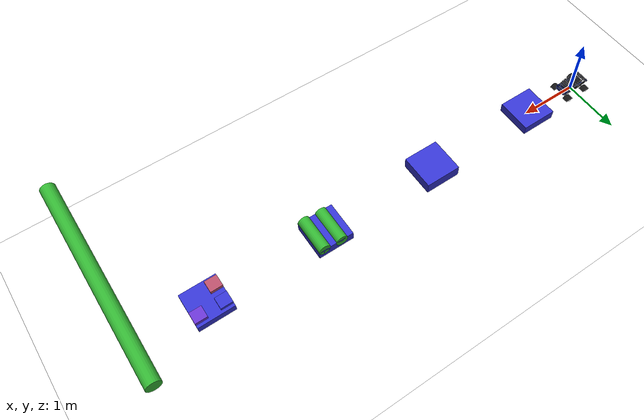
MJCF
<mujoco model="monster_truck_flip_2d">
  <option gravity="0 0 -9.81" integrator="RK4" timestep="0.001"/>
  <compiler angle="radian"/>

  <default>
    <geom contype="1" conaffinity="1"
          friction="2.0 0.005 0.0002"
          solref="0.015 1"
          solimp="0.95 0.99 0.002"
          density="1000"/>
    <joint damping="0.02"/>
  </default>

  <visual>
    <quality shadowsize="2048"/>
    <map znear="0.01" zfar="20"/>
  </visual>

  <worldbody>
      <light name="sun" pos="0 0 100" dir="0 0 -1" diffuse="1 1 1"/>
      <geom name="ground" type="plane" size="100 100 0.1" rgba="1 1 1 1"/>

      <!-- obstacles single box-->
      <geom name="obs_box_1" type="box"
            pos="1.0 0.0 0.05"
            size="0.30 0.30 0.1"
            rgba="0.2 0.2 0.8 1"
            friction="5.01 0.01 0.0005"/>

      <!-- Bigger obstacles single box-->
      <geom name="obs_box_2" type="box"
            pos="3.0 0.0 0.1"
            size="0.30 0.30 0.1"
            rgba="0.2 0.2 0.8 1"
            friction="5.01 0.01 0.0005"/>

      <!-- obstacles rounded cilinders-->
      <geom name="obs_box_3" type="box"
            pos="5.0 0.0 0.05"
            size="0.30 0.30 0.1"
            rgba="0.2 0.2 0.8 1"
            friction="5.01 0.01 0.0005"/>

      <geom name="pole_box_1" type="cylinder"
            pos="4.9 0.0 0.12"
            size="0.10 0.30"
            euler="1.5708 0 0"
            rgba="0.2 0.7 0.2 1"
            friction="5.01 0.01 0.0005"/>

      <geom name="pole_box_2" type="cylinder"
            pos="5.2 0.0 0.15"
            size="0.10 0.3"
            euler="1.5708 0 0"
            rgba="0.2 0.7 0.2 1"
            friction="5.01 0.01 0.0005"/>

      <!-- obstacles boxes-->
      <geom name="obs_box_4" type="box"
            pos="7.0 0.0 0.03"
            size="0.30 0.30 0.09"
            rgba="0.2 0.2 0.8 1"
            friction="5.01 0.01 0.0005"/>

      <geom name="obs_box_5" type="box"
            pos="7.2 0.15 0.09"
            size="0.10 0.10 0.09"
            rgba="0.4 0.2 0.8 1"
            friction="7.01 0.01 0.0009"/>

      <geom name="obs_box_6" type="box"
            pos="6.8 -0.15 0.09"
            size="0.10 0.10 0.09"
            rgba="0.7 0.3 0.4 1"
            friction="5.01 0.01 0.0007"/>

      <geom name="obs_box_7" type="box"
            pos="6.8 0.15 0.09"
            size="0.10 0.10 0.08"
            rgba="0.2 0.2 0.8 1"
            friction="5.01 0.01 0.0005"/>

      <!-- Green bar at the end-->
      <geom name="pole_1" type="cylinder"
            pos="8.0 0.0 2.05"
            size="0.10 1.50"
            euler="1.5708 0 0"
            rgba="0.2 0.7 0.2 1"
            friction="5.01 0.01 0.0005"/>

      <!--
      Planar root: x-z translation + pitch about y
      This replaces the freejoint and constrains the truck to 2D.
      -->
      <body name="planar_base" pos="0 0 0">
      <joint name="root_x" type="slide" axis="1 0 0" damping="0.05"/>
      <joint name="root_z" type="slide" axis="0 0 1" damping="0.05"/>
      <joint name="root_pitch" type="hinge" axis="0 1 0" damping="0.02"/>

      <body name="chassis" pos="0 0 0.0178" quat="1 0 0 0">

        <site name="imu_site" pos="0 0 0.045" size="0.01" rgba="0 1 0 1"/>

        <!-- =========================================================
             CORE MASS / INNER CHASSIS
             ========================================================= -->
        <geom name="main_belly" type="box"
              pos="0 0 0.018"
              size="0.175 0.085 0.030"
              rgba="0.10 0.10 0.12 1"
              mass="2.10"/>

        <geom name="upper_plate" type="box"
              pos="0 0 0.055"
              size="0.125 0.075 0.020"
              rgba="0.15 0.15 0.18 1"
              mass="0.42"/>

        <geom name="front_bulkhead" type="box"
              pos="0.145 0 0.025"
              size="0.035 0.070 0.028"
              rgba="0.08 0.08 0.10 1"
              mass="0.10"/>

        <geom name="rear_bulkhead" type="box"
              pos="-0.155 0 0.025"
              size="0.040 0.070 0.028"
              rgba="0.08 0.08 0.10 1"
              mass="0.10"/>

        <geom name="skid_plate" type="box"
              pos="0 0 -0.020"
              size="0.195 0.080 0.010"
              rgba="0.20 0.20 0.22 1"
              mass="0.03"/>

        <geom name="hood_rib_1" type="capsule"
              fromto="0.226 -0.100 0.066   0.226 0.100 0.066"
              size="0.012"
              rgba="0.04 0.09 0.40 1"
              mass="0.028"/>

        <geom name="hood_rib_2" type="capsule"
              fromto="0.188 -0.099 0.076   0.188 0.099 0.076"
              size="0.012"
              rgba="0.04 0.09 0.40 1"
              mass="0.028"/>

        <geom name="hood_rib_3" type="capsule"
              fromto="0.150 -0.097 0.089   0.150 0.097 0.089"
              size="0.0115"
              rgba="0.04 0.09 0.40 1"
              mass="0.026"/>

        <geom name="hood_rib_4" type="capsule"
              fromto="0.114 -0.095 0.102   0.114 0.095 0.102"
              size="0.0105"
              rgba="0.04 0.09 0.40 1"
              mass="0.023"/>

        <!-- hood side shoulders -->
        <geom name="hood_shoulder_l" type="capsule"
              fromto="0.223 0.108 0.063   0.098 0.100 0.103"
              size="0.007"
              rgba="0.05 0.10 0.45 1"
              mass="0.009"/>

        <geom name="hood_shoulder_r" type="capsule"
              fromto="0.223 -0.108 0.063   0.098 -0.100 0.103"
              size="0.007"
              rgba="0.05 0.10 0.45 1"
              mass="0.009"/>

        <geom name="windshield_rib_1" type="capsule"
              fromto="0.145 -0.096 0.107   0.145 0.096 0.107"
              size="0.012"
              rgba="0.02 0.02 0.03 1"
              mass="0.024"/>

        <geom name="windshield_rib_2" type="capsule"
              fromto="0.115 -0.094 0.124   0.115 0.094 0.124"
              size="0.012"
              rgba="0.02 0.02 0.03 1"
              mass="0.024"/>

        <geom name="windshield_rib_3" type="capsule"
              fromto="0.085 -0.091 0.142   0.085 0.091 0.142"
              size="0.011"
              rgba="0.02 0.02 0.03 1"
              mass="0.022"/>

        <!-- A-pillars -->
        <geom name="a_pillar_l" type="capsule"
              fromto="0.152 0.094 0.098   0.075 0.090 0.154"
              size="0.007"
              rgba="0.02 0.02 0.03 1"
              mass="0.010"/>

        <geom name="a_pillar_r" type="capsule"
              fromto="0.152 -0.094 0.098   0.075 -0.090 0.154"
              size="0.007"
              rgba="0.02 0.02 0.03 1"
              mass="0.010"/>

        <!-- slightly more rounded roof -->
        <geom name="roof_rib_1" type="capsule"
              fromto="0.075 -0.088 0.154   0.075 0.088 0.154"
              size="0.011"
              rgba="0.01 0.01 0.03 1"
              mass="0.020"/>

        <geom name="roof_rib_2" type="capsule"
              fromto="0.025 -0.089 0.160   0.025 0.089 0.160"
              size="0.0115"
              rgba="0.01 0.01 0.03 1"
              mass="0.021"/>

        <geom name="roof_rib_3" type="capsule"
              fromto="-0.025 -0.090 0.164   -0.025 0.090 0.164"
              size="0.012"
              rgba="0.01 0.01 0.03 1"
              mass="0.022"/>

        <geom name="roof_rib_4" type="capsule"
              fromto="-0.075 -0.090 0.164   -0.075 0.090 0.164"
              size="0.012"
              rgba="0.01 0.01 0.03 1"
              mass="0.022"/>

        <geom name="roof_rib_5" type="capsule"
              fromto="-0.125 -0.089 0.160   -0.125 0.089 0.160"
              size="0.0115"
              rgba="0.01 0.01 0.03 1"
              mass="0.021"/>

        <geom name="roof_rib_6" type="capsule"
              fromto="-0.175 -0.088 0.154   -0.175 0.088 0.154"
              size="0.011"
              rgba="0.01 0.01 0.03 1"
              mass="0.020"/>

        <!-- center crown -->
        <geom name="roof_spine" type="capsule"
              fromto="0.070 0.000 0.159   -0.175 0.000 0.159"
              size="0.0065"
              rgba="0.02 0.02 0.04 1"
              mass="0.010"/>

        <!-- slightly lower side rails -> more dome -->
        <geom name="roof_side_l" type="capsule"
              fromto="0.075 0.086 0.149   -0.175 0.090 0.149"
              size="0.0065"
              rgba="0.02 0.02 0.04 1"
              mass="0.009"/>

        <geom name="roof_side_r" type="capsule"
              fromto="0.075 -0.086 0.149   -0.175 -0.090 0.149"
              size="0.0065"
              rgba="0.02 0.02 0.04 1"
              mass="0.009"/>

        <geom name="rear_rib_1" type="capsule"
              fromto="-0.205 -0.095 0.148   -0.205 0.095 0.148"
              size="0.012"
              rgba="0.02 0.02 0.03 1"
              mass="0.022"/>

        <geom name="rear_rib_2" type="capsule"
              fromto="-0.225 -0.097 0.130   -0.225 0.097 0.130"
              size="0.012"
              rgba="0.02 0.02 0.03 1"
              mass="0.022"/>

        <geom name="rear_rib_3" type="capsule"
              fromto="-0.245 -0.100 0.108   -0.245 0.100 0.108"
              size="0.012"
              rgba="0.02 0.02 0.03 1"
              mass="0.022"/>

        <geom name="rear_rib_4" type="capsule"
              fromto="-0.258 -0.102 0.084   -0.258 0.102 0.084"
              size="0.011"
              rgba="0.02 0.02 0.03 1"
              mass="0.020"/>

        <geom name="rear_tail_lower" type="capsule"
              fromto="-0.265 -0.103 0.064   -0.265 0.103 0.064"
              size="0.010"
              rgba="0.03 0.03 0.05 1"
              mass="0.015"/>

        <!-- rounded rear side corners -->
        <geom name="rear_side_curve_l" type="capsule"
              fromto="-0.175 0.094 0.154   -0.258 0.103 0.084"
              size="0.008"
              rgba="0.02 0.02 0.03 1"
              mass="0.012"/>

        <geom name="rear_side_curve_r" type="capsule"
              fromto="-0.175 -0.094 0.154   -0.258 -0.103 0.084"
              size="0.008"
              rgba="0.02 0.02 0.03 1"
              mass="0.012"/>

        <!-- rear shoulder edges -->
        <geom name="rear_shoulder_l" type="capsule"
              fromto="-0.205 0.108 0.145   -0.262 0.110 0.090"
              size="0.008"
              rgba="0.05 0.10 0.45 1"
              mass="0.010"/>

        <geom name="rear_shoulder_r" type="capsule"
              fromto="-0.205 -0.108 0.145   -0.262 -0.110 0.090"
              size="0.008"
              rgba="0.05 0.10 0.45 1"
              mass="0.010"/>

        <geom name="left_lower_front" type="box"
              pos="0.105 0.099 0.072"
              size="0.080 0.005 0.026"
              rgba="0.03 0.03 0.05 1"
              mass="0.015"/>

        <geom name="right_lower_front" type="box"
              pos="0.105 -0.099 0.072"
              size="0.080 0.005 0.026"
              rgba="0.03 0.03 0.05 1"
              mass="0.015"/>

        <geom name="left_lower_mid" type="box"
              pos="-0.010 0.099 0.070"
              size="0.050 0.005 0.032"
              rgba="0.03 0.03 0.05 1"
              mass="0.012"/>

        <geom name="right_lower_mid" type="box"
              pos="-0.010 -0.099 0.070"
              size="0.050 0.005 0.032"
              rgba="0.03 0.03 0.05 1"
              mass="0.012"/>

        <geom name="left_lower_rear" type="box"
              pos="-0.155 0.101 0.078"
              size="0.070 0.005 0.030"
              euler="0 0.10 0"
              rgba="0.03 0.03 0.05 1"
              mass="0.012"/>

        <geom name="right_lower_rear" type="box"
              pos="-0.155 -0.101 0.078"
              size="0.070 0.005 0.030"
              euler="0 0.10 0"
              rgba="0.03 0.03 0.05 1"
              mass="0.012"/>

        <!-- =========================================================
             FRONT FACE
             ========================================================= -->
        <geom name="front_face" type="box"
              pos="0.237 0 0.054"
              size="0.008 0.093 0.028"
              rgba="0.04 0.09 0.40 1"
              mass="0.016"/>

        <geom name="front_face_top" type="capsule"
              fromto="0.233 -0.090 0.083   0.233 0.090 0.083"
              size="0.007"
              rgba="0.04 0.09 0.40 1"
              mass="0.008"/>

        <!-- =========================================================
             VISUAL-ONLY WINDOWS
             ========================================================= -->
        <geom name="windshield_glass_1" type="box"
              pos="0.128 0 0.121"
              size="0.050 0.080 0.003"
              euler="0 -2.55 0"
              rgba="0.92 0.93 0.96 0.30"
              contype="0" conaffinity="0" density="0"/>

        <geom name="left_side_glass" type="box"
              pos="-0.045 0.091 0.118"
              size="0.047 0.002 0.024"
              euler="0 0.08 0"
              rgba="0.90 0.92 0.95 0.25"
              contype="0" conaffinity="0" density="0"/>

        <geom name="right_side_glass" type="box"
              pos="-0.045 -0.091 0.118"
              size="0.047 0.002 0.024"
              euler="0 0.08 0"
              rgba="0.90 0.92 0.95 0.25"
              contype="0" conaffinity="0" density="0"/>

        <!-- optional visual blue inner bars -->
        <geom name="inner_bar_l" type="capsule"
              fromto="0.025 0.083 0.080  -0.160 0.083 0.086"
              size="0.005"
              rgba="0.15 0.30 0.95 1"
              contype="0" conaffinity="0" density="0"/>

        <geom name="inner_bar_r" type="capsule"
              fromto="0.025 -0.083 0.080  -0.160 -0.083 0.086"
              size="0.005"
              rgba="0.15 0.30 0.95 1"
              contype="0" conaffinity="0" density="0"/>

        <!-- visual axle tubes -->
        <geom name="front_axle_vis" type="capsule"
              fromto="0.1905 -0.130 -0.080   0.1905 0.130 -0.080"
              size="0.012"
              rgba="0.08 0.08 0.08 1"
              contype="0" conaffinity="0" density="0"/>

        <geom name="rear_axle_vis" type="capsule"
              fromto="-0.1905 -0.130 -0.080  -0.1905 0.130 -0.080"
              size="0.012"
              rgba="0.08 0.08 0.08 1"
              contype="0" conaffinity="0" density="0"/>

        <body name="wheel_fl" pos=" 0.1905  0.1545 -0.080">
          <joint name="j_fl" type="hinge" axis="0 1 0" damping="0.002"/>
          <geom name="tire_fl" type="cylinder"
                size="0.089 0.051"
                euler="1.5708 0 0"
                rgba="0.08 0.08 0.08 1"
                mass="0.425"
                friction="2.01 0.005 0.0002"/>
          <geom name="rim_fl" type="cylinder"
                size="0.052 0.037"
                euler="1.5708 0 0"
                rgba="0.20 0.35 0.95 1"
                contype="0" conaffinity="0" density="0"/>
          <geom name="hub_fl" type="sphere"
                size="0.015"
                rgba="0.85 0.85 0.88 1"
                contype="0" conaffinity="0" density="0"/>
          <geom name="mark_fl" type="sphere" size="0.02" pos="0.01 0.05 0.04"
                rgba="1 1 1 1" contype="0" conaffinity="0" density="0"/>
        </body>

        <body name="wheel_fr" pos=" 0.1905 -0.1545 -0.080">
          <joint name="j_fr" type="hinge" axis="0 1 0" damping="0.002"/>
          <geom name="tire_fr" type="cylinder"
                size="0.089 0.051"
                euler="1.5708 0 0"
                rgba="0.08 0.08 0.08 1"
                mass="0.425"
                friction="2.01 0.005 0.0002"/>
          <geom name="rim_fr" type="cylinder"
                size="0.052 0.037"
                euler="1.5708 0 0"
                rgba="0.20 0.35 0.95 1"
                contype="0" conaffinity="0" density="0"/>
          <geom name="hub_fr" type="sphere"
                size="0.015"
                rgba="0.85 0.85 0.88 1"
                contype="0" conaffinity="0" density="0"/>
          <geom name="mark_fr" type="sphere" size="0.02" pos="0.01 -0.05 0.04"
                rgba="1 1 1 1" contype="0" conaffinity="0" density="0"/>
        </body>

        <body name="wheel_rl" pos="-0.1905  0.1545 -0.080">
          <joint name="j_rl" type="hinge" axis="0 1 0" damping="0.002"/>
          <geom name="tire_rl" type="cylinder"
                size="0.089 0.051"
                euler="1.5708 0 0"
                rgba="0.08 0.08 0.08 1"
                mass="0.425"
                friction="2.01 0.005 0.0002"/>
          <geom name="rim_rl" type="cylinder"
                size="0.052 0.037"
                euler="1.5708 0 0"
                rgba="0.20 0.35 0.95 1"
                contype="0" conaffinity="0" density="0"/>
          <geom name="hub_rl" type="sphere"
                size="0.015"
                rgba="0.85 0.85 0.88 1"
                contype="0" conaffinity="0" density="0"/>
          <geom name="mark_rl" type="sphere" size="0.02" pos="0.01 0.05 0.04"
                rgba="1 1 1 1" contype="0" conaffinity="0" density="0"/>
        </body>

        <body name="wheel_rr" pos="-0.1905 -0.1545 -0.080">
          <joint name="j_rr" type="hinge" axis="0 1 0" damping="0.002"/>
          <geom name="tire_rr" type="cylinder"
                size="0.089 0.051"
                euler="1.5708 0 0"
                rgba="0.08 0.08 0.08 1"
                mass="0.425"
                friction="2.01 0.005 0.0002"/>
          <geom name="rim_rr" type="cylinder"
                size="0.052 0.037"
                euler="1.5708 0 0"
                rgba="0.20 0.35 0.95 1"
                contype="0" conaffinity="0" density="0"/>
          <geom name="hub_rr" type="sphere"
                size="0.015"
                rgba="1 1 1 1"
                contype="0" conaffinity="0" density="0"/>
          <geom name="mark_rr" type="sphere" size="0.02" pos="0.01 -0.05 0.04"
                rgba="1 1 1 1" contype="0" conaffinity="0" density="0"/>
        </body>
      </body>
    </body>
  </worldbody>

  <tendon>
    <fixed name="drive">
      <joint joint="j_fl" coef="0.25"/>
      <joint joint="j_fr" coef="0.25"/>
      <joint joint="j_rl" coef="0.25"/>
      <joint joint="j_rr" coef="0.25"/>
    </fixed>
  </tendon>

  <actuator>
    <motor name="drive_motor"
            tendon="drive"
            ctrllimited="true"
            ctrlrange="-45.0 45.0"
            gear="1.0"/>
  </actuator>

  <sensor>
    <accelerometer name="imu_acc"  site="imu_site"/>
    <gyro          name="imu_gyro" site="imu_site"/>
    <velocimeter   name="imu_vel"  site="imu_site"/>
  </sensor>
</mujoco>
